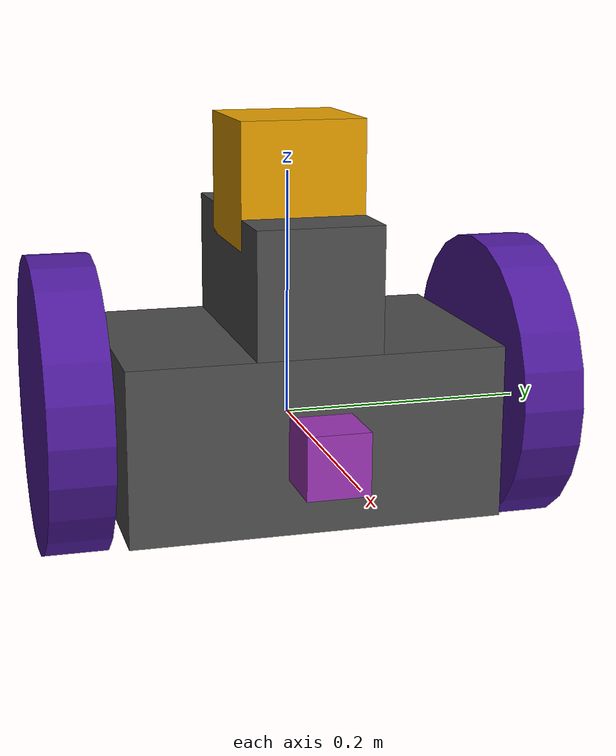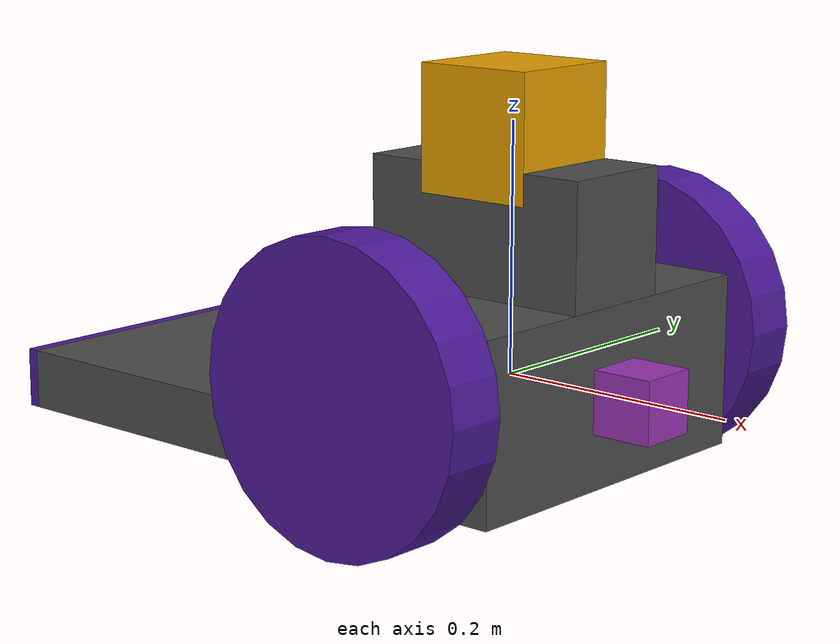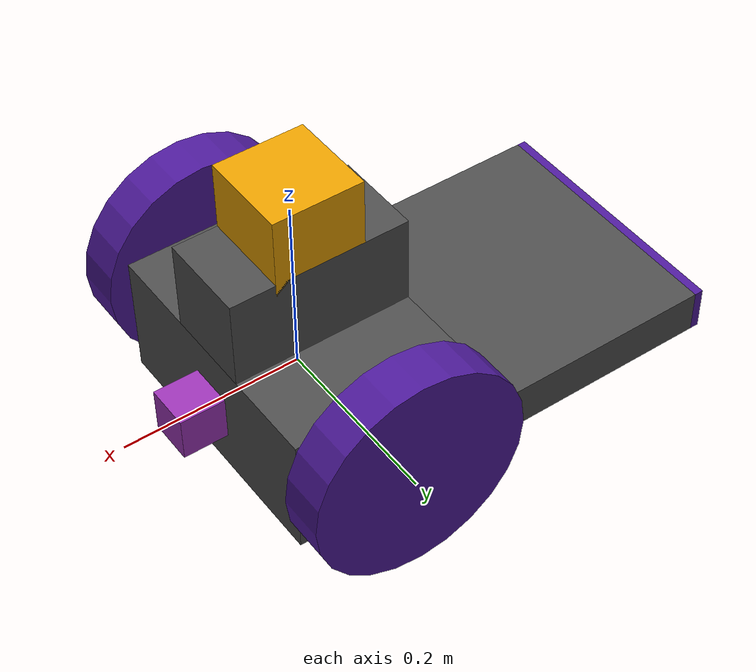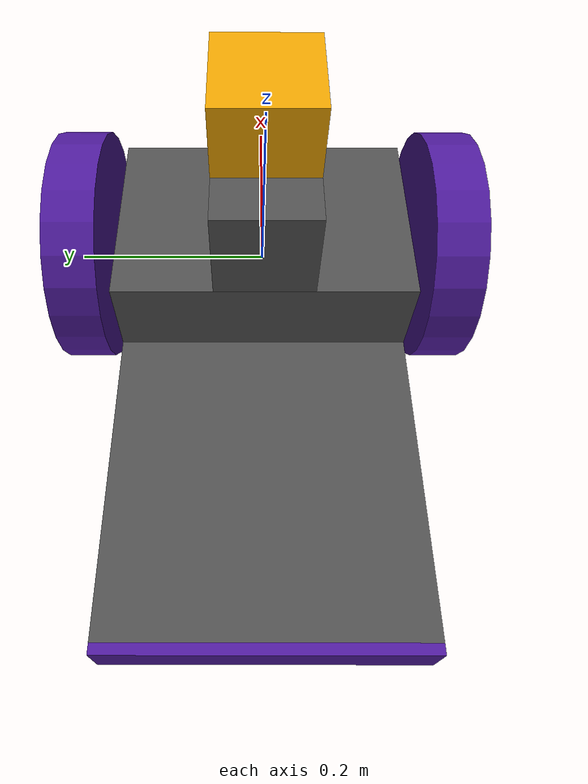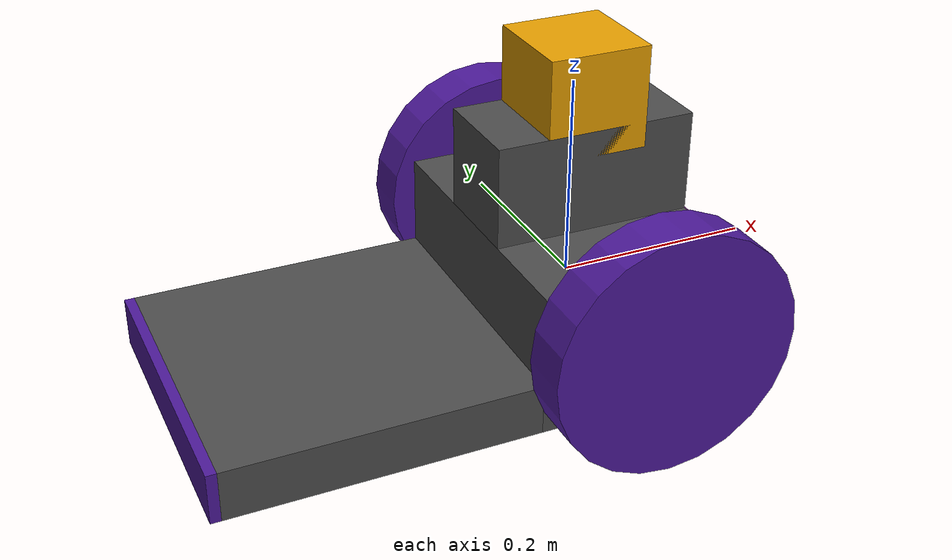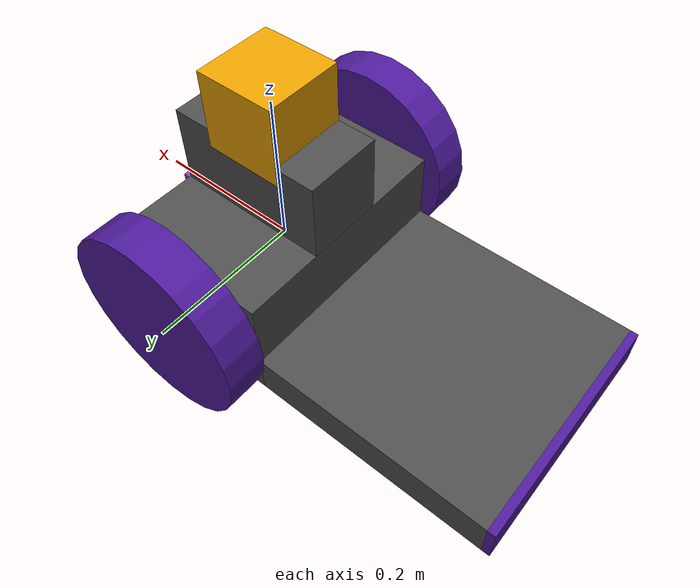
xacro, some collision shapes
<?xml version='1.0'?>

<robot name="my_robot"
  xmlns:xacro="http://www.ros.org/wiki/xacro">

  <!-- #### INERTIA MACROS ####  -->
  <xacro:macro name="cuboid_inertia" params="m x y z">
    <inertia ixx="${m*(y*y+z*z)/12}" ixy = "0" ixz = "0" iyy="${m*(x*x+z*z)/12}" iyz = "0" izz="${m*(x*x+y*y)/12}" />
  </xacro:macro>

  <xacro:macro name="cylinder_inertia" params="m r l">
    <inertia ixx="${m*(3*r*r+l*l)/12}" ixy = "0" ixz = "0" iyy="${m*(3*r*r+l*l)/12}" iyz = "0" izz="${m*r*r/2}" />
  </xacro:macro>

  <xacro:macro name="sphere_inertia" params="m r">
    <inertia ixx="${2*m*r*r/5}" ixy = "0" ixz = "0" iyy="${2*m*r*r/5}" iyz = "0" izz="${2*m*r*r/5}" />
  </xacro:macro>

  <xacro:property name="wheel_mass" value="0.5" />
  <xacro:property name="wheel_radius" value="0.12" />
  <xacro:property name="wheel_length" value="0.05" />

  <xacro:property name="caster_radius" value="0.03" />

  <xacro:property name="base_x_len" value="0.2" />
  <xacro:property name="base_y_len" value="0.3" />
  <xacro:property name="base_z_len" value="0.14" />
  <xacro:property name="base_chassis_mass" value="10" />

  <link name="robot_footprint"></link>

  <xacro:include filename="$(find my_robot)/urdf/my_robot.gazebo" />

  <joint name="robot_footprint_joint" type="fixed">
    <origin xyz="0 0 0" rpy="0 0 0" />
    <parent link="robot_footprint"/>
    <child link="base_chassis" />
  </joint>

  <link name='base_chassis'>
    <pose>0 0 0.12 0 0 0</pose>

    <inertial>
      <mass value="${base_chassis_mass}"/>
      <origin xyz="0 0 0" rpy=" 0 0 0"/>
      <cuboid_inertia m="${base_chassis_mass}" x= "${base_x_len}" y= "${base_y_len}" z="${base_z_len}"/>
    </inertial>

    <collision name='collision'>
      <origin xyz="0 0 0" rpy=" 0 0 0"/>
      <geometry>
        <box size="${base_x_len} ${base_y_len} ${base_z_len}"/>
      </geometry>
    </collision>

    <visual name='chassis_visual'>
      <origin xyz="0 0 0" rpy=" 0 0 0"/>
      <geometry>
        <box size="${base_x_len} ${base_y_len} ${base_z_len}"/>
      </geometry>
    </visual>

  </link>

  <link name='base_hokuyo'>
    <inertial>
      <mass value="0.01"/>
      <origin xyz="0 0 0" rpy=" 0 0 0"/>
      <cuboid_inertia m="0.01" x= "${base_x_len}" y= "0.1" z="0.1"/>
    </inertial>

    <collision name='collision'>
      <origin xyz="0 0 0" rpy=" 0 0 0"/>
      <geometry>
        <box size="${base_x_len} 0.1 0.1"/>
      </geometry>
    </collision>

    <visual name='sup_visual'>
      <origin xyz="0 0 0" rpy=" 0 0 0"/>
      <geometry>
        <box size="${base_x_len} 0.1 0.1"/>
      </geometry>
    </visual>
  </link>

  <joint type="fixed" name="base_hokuyo_joint">
    <origin xyz="0 0 0.12" rpy="0 0 0"/>
    <child link="base_hokuyo"/>
    <parent link="base_chassis"/>
  </joint>

<link name='sup_chassis'>

  <inertial>
    <mass value="${base_chassis_mass/3}"/>
    <origin xyz="0 0 0" rpy=" 0 0 0"/>
    <cuboid_inertia m="${base_chassis_mass/3}" x= "${base_x_len*1.5}" y= "${base_y_len}" z="0.05"/>
  </inertial>

  <collision name='collision'>
    <origin xyz="0 0 0" rpy=" 0 0 0"/>
    <geometry>
      <box size="${base_x_len*1.5} ${base_y_len} 0.05"/>
    </geometry>
  </collision>

  <visual name='chassis_visual'>
    <origin xyz="0 0 0" rpy=" 0 0 0"/>
    <geometry>
      <box size="${base_x_len*1.5} ${base_y_len} 0.05"/>
    </geometry>
  </visual>

  <collision name='caster_collision'>
    <origin xyz="${-base_x_len*3/4 + caster_radius} 0 -0.025" rpy=" 0 0 0"/>
    <geometry>
      <sphere radius="${caster_radius-0.001}"/>
    </geometry>
  </collision>

  <visual name='caster_visual'>
    <origin xyz="${-base_x_len*3/4 + caster_radius} 0 -0.025" rpy=" 0 0 0"/>
    <geometry>
      <sphere radius="${caster_radius}"/>
    </geometry>
  </visual>

</link>

<joint type="fixed" name="sup_chassis_joint">
  <origin xyz="${-base_x_len*5/4} 0 -0.045" rpy="0 0 0"/>
  <child link="sup_chassis"/>
  <parent link="base_chassis"/>
</joint>

<!-- Add a weigth bar on the end of the robot's bucket - (TEST ONLY) -->
<link name='back_sup_chassis'>

  <inertial>
    <mass value="0.1"/>
    <origin xyz="0 0 0" rpy=" 0 0 0"/>
    <cuboid_inertia m="0.1" x= "0.01" y= "${base_y_len}" z="0.05"/>
  </inertial>

  <collision name='collision'>
    <origin xyz="0 0 0" rpy=" 0 0 0"/>
    <geometry>
      <box size="0.01 ${base_y_len} 0.05"/>
    </geometry>
  </collision>

  <visual name='back_sup_chassis_visual'>
    <origin xyz="0 0 0" rpy=" 0 0 0"/>
    <geometry>
      <box size="0.01 ${base_y_len} 0.05"/>
    </geometry>
  </visual>

</link>

<joint type="fixed" name="back_sup_chassis_joint">
  <origin xyz="${-base_x_len*3/4 - 0.005} 0 0" rpy="0 0 0"/>
  <child link="back_sup_chassis"/>
  <parent link="sup_chassis"/>
</joint>

<!-- ### WHEELS ### -->

<link name='left_wheel'>

  <inertial>
    <mass value="${wheel_mass}"/>
    <origin xyz="0.0 0 0" rpy=" 0 1.5707 1.5707"/>
    <cylinder_inertia m="${wheel_mass}" r= "${wheel_radius}" l= "${wheel_length}"/>
  </inertial>

  <collision name='collision'>
    <origin xyz="0.0 0 0" rpy=" 0 1.5707 1.5707"/>
    <geometry>
      <cylinder radius="${wheel_radius}" length="${wheel_length}" />
    </geometry>
  </collision>

  <visual name='left_wheel_visual'>
    <origin xyz="0.0 0 0" rpy=" 0 1.5707 1.5707"/>
    <geometry>
      <cylinder radius="${wheel_radius}" length="${wheel_length}" />
    </geometry>
  </visual>
</link>

<link name='right_wheel'>

  <inertial>
    <mass value="${wheel_mass}"/>
    <origin xyz="0.0 0 0" rpy=" 0 1.5707 1.5707"/>
    <cylinder_inertia m="${wheel_mass}" r= "${wheel_radius}" l= "${wheel_length}"/>
  </inertial>

  <collision name='collision'>
    <origin xyz="0.0 0 0" rpy=" 0 1.5707 1.5707"/>
    <geometry>
      <cylinder radius="${wheel_radius}" length="${wheel_length}" />
    </geometry>
  </collision>

  <visual name='right_wheel_visual'>
    <origin xyz="0.0 0 0" rpy=" 0 1.5707 1.5707"/>
    <geometry>
      <cylinder radius="${wheel_radius}" length="${wheel_length}" />
    </geometry>
  </visual>
</link>

<joint type="continuous" name="left_wheel_hinge">
  <origin xyz="0 ${(base_y_len + wheel_length)/2 +0.01} 0.02" rpy="0 0 0"/>
  <child link="left_wheel"/>
  <parent link="base_chassis"/>
  <axis xyz="0 1 0" rpy="0 0 0"/>
  <limit effort="100" velocity="100"/>
  <dynamics damping="0.1" friction="0.1"/>
</joint>

<joint type="continuous" name="right_wheel_hinge">
  <origin xyz="0 ${-1*(base_y_len + wheel_length)/2 -0.01} 0.02" rpy="0 0 0"/>
  <child link="right_wheel"/>
  <parent link="base_chassis"/>
  <axis xyz="0 1 0" rpy="0 0 0"/>
  <limit effort="100" velocity="100"/>
  <dynamics damping="0.1" friction="0.1"/>
</joint>

<!-- ### CAMERA ### -->

<link name="camera">
  <inertial>
    <mass value="0.1"/>
    <origin xyz="0.0 0 0" rpy=" 0 0 0"/>
    <inertia ixx="1e-6" ixy="0" ixz="0" iyy="1e-6" iyz="0" izz="1e-6" />
  </inertial>
  <collision name='camera_collision'>
    <origin xyz="0 0 0" rpy=" 0 0 0"/>
    <geometry>
      <box size="0.05 0.05 0.05"/>
    </geometry>
  </collision>

  <visual name='camera_visual'>
    <origin xyz="0 0 0" rpy=" 0 0 0"/>
    <geometry>
      <box size="0.05 0.05 0.05"/>
    </geometry>
  </visual>
</link>

<joint type="fixed" name="camera_joint">
  <origin xyz="${base_x_len/2 +0.025} 0 0" rpy="0 0 0"/>
  <child link="camera"/>
  <parent link="base_chassis"/>
  <axis xyz="0 1 0" rpy="0 0 0.02"/>
</joint>

<!-- ### LIDAR ### -->

<link name="hokuyo">
  <inertial>
    <mass value="1e-5"/>
    <origin xyz="0.0 0 0" rpy=" 0 0 0"/>
    <inertia ixx="1e-6" ixy="0" ixz="0" iyy="1e-6" iyz="0" izz="1e-6" />
  </inertial>

  <collision name='hokuyo_collision'>
    <origin xyz="0 0 0" rpy=" 0 0 0"/>
    <geometry>
      <box size="0.1 0.1 0.1"/>
    </geometry>
  </collision>

  <visual name='hokuyo_visual'>
    <origin xyz="0 0 0" rpy=" 0 0 0"/>
    <geometry>
      <mesh filename="package://my_robot/meshes/hokuyo.dae"/>
    </geometry>
  </visual>

</link>

<joint type="fixed" name="hokuyo_joint">
  <origin xyz="0 0 0.075" rpy="0 0 0"/>
  <child link="hokuyo"/>
  <parent link="base_hokuyo"/>
  <axis xyz="0 1 0" rpy="0 0 0"/>
</joint>

</robot>
